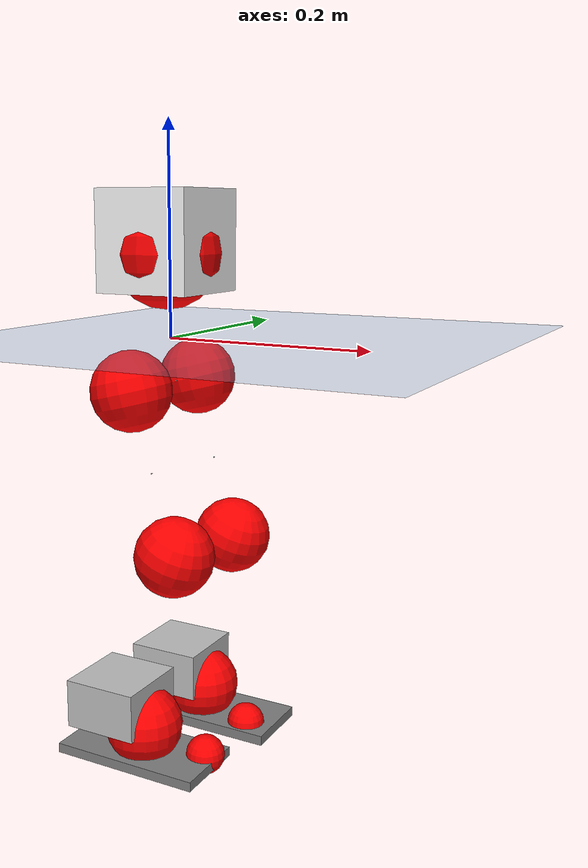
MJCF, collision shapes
<mujoco model="pi_12dof_release_v1">
  <compiler angle="radian" assetdir="assets" balanceinertia="true" inertiafromgeom="false"/>

  <option timestep="0.005" density="1.2" viscosity="2e-05"/>

  <size nkey="1"/>

  <visual>
    <quality shadowsize="8192"/>
    <map shadowclip="0.5"/>
  </visual>

  <default>
    <default class="/">
      <joint armature="0.01" damping="0.01" frictionloss="0.01"/>
      <geom contype="0" conaffinity="0" group="1" solref="-1000 -80"/>
      <site size="0.01 0.005 0.005" group="5"/>
      <general forcelimited="true" biastype="affine" gainprm="20" biasprm="0 -20 -0.5"/>
      <default class="foot">
        <geom size="0.0845 0.036 0.005" type="box" condim="6" group="4" priority="1" friction="0.9 0.2 0.2" solimp="0.015 1 0.005"/>
      </default>
      <default class="reward_collision_sphere">
        <geom group="5" rgba="1 0 0 1"/>
      </default>
    </default>
  </default>

  <asset>
    <texture type="skybox" colorspace="auto" name="//unnamed_texture_0" builtin="gradient" rgb1="0.95 0.95 0.95" rgb2="0.95 0.95 0.95" width="100" height="600"/>
    <texture type="2d" colorspace="auto" name="texplane" builtin="checker" rgb1="0.345 0.575 0.748" rgb2="0.345 0.575 0.748" markrgb="1 1 1" width="512" height="512"/>
    <material name="MatPlane" class="/" texture="texplane" texuniform="true" texrepeat="2 2" specular="0.9"/>
    <mesh name="baselink_1" class="/" file="baselink_1.STL"/>
    <mesh name="r_hip_pitch_link" class="/" file="r_hip_pitch_link.STL"/>
    <mesh name="r_hip_roll_link" class="/" file="r_hip_roll_link.STL"/>
    <mesh name="r_thigh_link" class="/" file="r_thigh_link.STL"/>
    <mesh name="r_calf_link" class="/" file="r_calf_link.STL"/>
    <mesh name="r_ankle_pitch_link" class="/" file="r_ankle_pitch_link.STL"/>
    <mesh name="r_ankle_roll_link" class="/" file="r_ankle_roll_link.STL"/>
    <mesh name="l_hip_pitch_link" class="/" file="l_hip_pitch_link.STL"/>
    <mesh name="l_hip_roll_link" class="/" file="l_hip_roll_link.STL"/>
    <mesh name="l_thigh_link" class="/" file="l_thigh_link.STL"/>
    <mesh name="l_calf_link" class="/" file="l_calf_link.STL"/>
    <mesh name="l_ankle_pitch_link" class="/" file="l_ankle_pitch_link.STL"/>
    <mesh name="l_ankle_roll_link" class="/" file="l_ankle_roll_link.STL"/>
  </asset>

  <worldbody>
    <geom name="floor" class="/" size="100 100 0.125" type="plane" group="0" material="MatPlane"/>
    <light name="toplight_shadow" class="/" pos="0 0 5" dir="0.0990148 0.0990148 -0.990148" type="directional" ambient="0.04 0.04 0.04" diffuse="0.55 0.55 0.55" specular="0.12 0.12 0.12"/>
    <light name="toplight_fill" class="/" pos="0 0 5" dir="0.0990148 0.0990148 -0.990148" type="directional" castshadow="false" ambient="0.04 0.04 0.04" diffuse="0.3 0.3 0.3" specular="0.08 0.08 0.08"/>
    <body name="trunk" pos="-0.00283266 -0.000869843 -0.00241338" quat="0.999999 0.00039263 0.00109356 0.000775966">
      <inertial pos="-0.000373431 0.00175773 0.0454748" quat="0.702383 0.0103298 0.000593085 0.711724" mass="1.79649" diaginertia="0.00671584 0.00194377 0.00891003"/>
      <joint name="//unnamed_joint_0" type="free"/>
      <geom name="//unnamed_geom_1" class="/" type="mesh" density="0" rgba="1 1 1 1" mesh="baselink_1"/>
      <geom name="//unnamed_geom_2" class="/" size="0.0469955 0.0469955 0.0469955" pos="0 0 0.0928467" type="box" rgba="1 1 1 1"/>
      <geom name="//unnamed_geom_3" class="reward_collision_sphere" size="0.051695" pos="0 0 0.0812408"/>
      <site name="imu" class="/" pos="0.013042 -0.00545621 -0.00715075" size="0.0093991"/>
      <camera name="track" class="/" pos="0 -1.47111 0" quat="0.707107 0.707107 0 0" mode="trackcom"/>
      <camera name="ego_camera" class="/" pos="0.0692692 0 0.208905" quat="-0.5 -0.5 0.5 0.5"/>
      <body name="r_hip_pitch_link" pos="-0.00146468 -0.0171022 -0.0392918" quat="0.992131 -0.00037379 -0.1252 2.64984e-05">
        <inertial pos="-0.0016442 -0.0408097 -7.7442e-05" quat="-0.0244731 0.713533 -0.0351303 0.699312" mass="0.314885" diaginertia="7.49012e-05 2.17366e-05 0.000184714"/>
        <joint name="r_hip_pitch_joint" class="/" pos="0 0 0" axis="-0.00143784 -0.999997 0.00196984" range="-1.74905 1.22534" armature="0.00820948" damping="0.00856128" frictionloss="0.00969655"/>
        <geom name="//unnamed_geom_4" class="/" type="mesh" density="0" rgba="0.75294 0.75294 0.75294 1" mesh="r_hip_pitch_link"/>
        <geom name="//unnamed_geom_5" class="/" size="0.000469955 0.000469955 0.000469955" type="box" rgba="0.75294 0.75294 0.75294 1"/>
        <body name="r_hip_roll_link" pos="-0.00172556 -0.0405951 4.03792e-05" quat="1 5.87369e-05 6.28667e-05 -8.93352e-05">
          <inertial pos="-0.00153442 -0.00205373 -0.0718354" quat="0.705472 -0.0815948 -0.0851097 0.698861" mass="0.322012" diaginertia="0.000220878 5.7439e-05 0.000266687"/>
          <joint name="r_hip_roll_joint" class="/" pos="0 0 0" axis="-0.999907 -0.00272551 0.0133579" range="-0.142518 0.540754" armature="0.0100417" damping="0.0050866" frictionloss="0.00887903"/>
          <geom name="//unnamed_geom_6" class="/" type="mesh" density="0" rgba="0.75294 0.75294 0.75294 1" mesh="r_hip_roll_link"/>
          <geom name="//unnamed_geom_7" class="/" size="0.000469955 0.000469955 0.000469955" type="box" rgba="0.75294 0.75294 0.75294 1"/>
          <geom name="//unnamed_geom_8" class="reward_collision_sphere" size="0.0375964"/>
          <body name="r_thigh_link" pos="0.00049058 0.00182123 -0.0772066" quat="1 -0.000442016 7.31212e-05 -0.000392167">
            <inertial pos="-0.000127045 -0.00200455 -0.0522837" quat="0.737329 0.675533 0.000165761 -9.18322e-05" mass="0.096198" diaginertia="8.71172e-05 2.04124e-05 0.000122029"/>
            <joint name="r_thigh_joint" class="/" pos="0 0 0" axis="-0.0160642 0.000853296 -0.999871" stiffness="0.00577337" range="-0.287707 0.626116" armature="0.00914817" damping="0" frictionloss="0.00890737"/>
            <geom name="//unnamed_geom_9" class="/" type="mesh" density="0" rgba="0.75294 0.75294 0.75294 1" mesh="r_thigh_link"/>
            <geom name="//unnamed_geom_10" class="/" size="0.000469955 0.000469955 0.000469955" type="box" rgba="0.75294 0.75294 0.75294 1"/>
            <body name="r_calf_link" pos="0.00285041 0.00152787 -0.0797099" quat="0.947655 -1.83479e-05 0.319297 3.20665e-06">
              <inertial pos="-0.00128426 -0.00352286 -0.0806556" quat="0.999895 -0.00688096 -0.00728252 0.0104843" mass="0.690214" diaginertia="0.00234474 0.000788611 0.000373575"/>
              <joint name="r_calf_joint" class="/" pos="0 0 0" axis="-0.000177538 -1 -0.000165051" range="-1.6084 0.650933" armature="0.0080009" damping="0.00387865" frictionloss="0.00940116"/>
              <geom name="//unnamed_geom_11" class="/" type="mesh" density="0" rgba="0.75294 0.75294 0.75294 1" mesh="r_calf_link"/>
              <geom name="//unnamed_geom_12" class="/" size="0.000469955 0.000469955 0.000469955" type="box" rgba="0.75294 0.75294 0.75294 1"/>
              <geom name="//unnamed_geom_13" class="reward_collision_sphere" size="0.0375964"/>
              <body name="r_ankle_pitch_link" pos="0.00254435 -0.000480026 -0.164722" quat="0.979952 0.00026741 -0.199234 -7.62016e-05">
                <inertial pos="0.00380095 0.00265629 -0.00188283" quat="0.00514067 0.704506 -0.00199924 0.709677" mass="0.151246" diaginertia="0.000204994 4.88531e-05 0.000258173"/>
                <joint name="r_ankle_pitch_joint" class="/" pos="0 0 0" axis="0.0062731 -0.99998 -0.000345484" stiffness="0.000575137" range="-1.29459 0.528704" armature="0.00948548" damping="0.00919307" frictionloss="0.0105305"/>
                <geom name="//unnamed_geom_14" class="/" type="mesh" density="0" rgba="0.75294 0.75294 0.75294 1" mesh="r_ankle_pitch_link"/>
                <geom name="//unnamed_geom_15" class="/" size="0.0366565 0.0375964 0.0234977" type="box" rgba="0.75294 0.75294 0.75294 1"/>
                <body name="r_ankle_roll_link" pos="0.0708029 0.00229586 -0.000671908" quat="1 -0.000260111 -8.93991e-05 -0.000412342">
                  <inertial pos="-0.0223599 -0.000614082 -0.0159103" quat="0.557759 0.421872 0.443016 0.560951" mass="0.411218" diaginertia="0.00076949 0.000222879 0.000573785"/>
                  <joint name="r_ankle_roll_joint" class="/" pos="0 0 0" axis="-0.999939 -0.0104885 0.00345251" range="-0.0938362 0.10303" armature="0.00848033" damping="0.0208188" frictionloss="0.0081768"/>
                  <geom name="//unnamed_geom_16" class="/" type="mesh" density="0" rgba="0.75294 0.75294 0.75294 1" mesh="r_ankle_roll_link"/>
                  <geom name="//unnamed_geom_17" class="/" type="mesh" rgba="0.75294 0.75294 0.75294 1" mesh="r_ankle_roll_link"/>
                  <geom name="right_foot" class="foot" size="0.0747768 0.0373995 0.0046873" pos="-0.0471031 0 -0.0510657"/>
                  <geom name="//unnamed_geom_19" class="reward_collision_sphere" size="0.0375964" pos="-0.0461795 0 -0.0232117"/>
                  <geom name="//unnamed_geom_20" class="reward_collision_sphere" size="0.0187982" pos="0.0138538 0.0147111 -0.0464233"/>
                  <geom name="//unnamed_geom_21" class="reward_collision_sphere" size="0.0187982" pos="-0.110831 0.0147111 -0.0464233"/>
                  <site name="right_foot" class="foot" pos="-0.0471031 0 -0.0510657" size="0.0093991"/>
                </body>
              </body>
            </body>
          </body>
        </body>
      </body>
      <body name="l_hip_pitch_link" pos="-0.000108724 0.0148537 -0.0400417" quat="0.992172 -0.000154877 -0.124882 0.000161748">
        <inertial pos="0.0010388 0.040801 -0.00237975" quat="-0.040558 0.704986 0.0337595 0.707255" mass="0.336393" diaginertia="8.99989e-05 2.21057e-05 0.000212044"/>
        <joint name="l_hip_pitch_joint" class="/" pos="0 0 0" axis="0.0095206 0.999943 -0.00490335" range="-1.19076 1.73085" armature="0.0107888" damping="0.00503868" frictionloss="0.00977406"/>
        <geom name="//unnamed_geom_22" class="/" type="mesh" density="0" rgba="0.75294 0.75294 0.75294 1" mesh="l_hip_pitch_link"/>
        <geom name="//unnamed_geom_23" class="/" size="0.000469955 0.000469955 0.000469955" type="box" rgba="0.75294 0.75294 0.75294 1"/>
        <body name="l_hip_roll_link" pos="-0.000129384 0.0408416 -0.000623505" quat="1 0.000344787 0.00033591 0.000303962">
          <inertial pos="-0.00382654 -0.000549356 -0.0717123" quat="0.700547 -0.0698343 -0.0875931 0.704758" mass="0.332328" diaginertia="0.000223833 6.10382e-05 0.000269626"/>
          <joint name="l_hip_roll_joint" class="/" pos="0 0 0" axis="-0.999996 -0.00182086 0.00219402" stiffness="0.0041646" range="-0.537263 0.17123" armature="0.00826985" damping="0.0029743" frictionloss="0.00944626"/>
          <geom name="//unnamed_geom_24" class="/" type="mesh" density="0" rgba="0.75294 0.75294 0.75294 1" mesh="l_hip_roll_link"/>
          <geom name="//unnamed_geom_25" class="/" size="0.000469955 0.000469955 0.000469955" type="box" rgba="0.75294 0.75294 0.75294 1"/>
          <geom name="//unnamed_geom_26" class="reward_collision_sphere" size="0.0375964"/>
          <body name="l_thigh_link" pos="-0.00276828 0.00165121 -0.0833758" quat="1 -0.000233158 0.000136902 -0.000128859">
            <inertial pos="0.00282997 -0.00413357 -0.0522807" quat="0.670308 0.741993 0.00395723 0.0108664" mass="0.0907968" diaginertia="8.43248e-05 2.09446e-05 0.000120623"/>
            <joint name="l_thigh_joint" class="/" pos="0 0 0" axis="-0.00117214 -0.000119107 -0.999999" range="-0.59291 0.248546" armature="0.00938534" damping="0.00233476" frictionloss="0.00986313"/>
            <geom name="//unnamed_geom_27" class="/" type="mesh" density="0" rgba="0.75294 0.75294 0.75294 1" mesh="l_thigh_link"/>
            <geom name="//unnamed_geom_28" class="/" size="0.000469955 0.000469955 0.000469955" type="box" rgba="0.75294 0.75294 0.75294 1"/>
            <body name="l_calf_link" pos="0.00159685 -0.000352232 -0.0809048" quat="0.947524 0.0001885 0.319685 0.00031544">
              <inertial pos="0.000660343 0.00463167 -0.0840733" quat="0.999986 0.00301203 8.64902e-05 0.00432103" mass="0.680416" diaginertia="0.00234223 0.000743514 0.000360198"/>
              <joint name="l_calf_joint" class="/" pos="0 0 0" axis="6.16192e-05 1 0.000123718" range="-0.623809 1.69541" armature="0.00952647" damping="0.00773354" frictionloss="0.00997138"/>
              <geom name="//unnamed_geom_29" class="/" type="mesh" density="0" rgba="0.75294 0.75294 0.75294 1" mesh="l_calf_link"/>
              <geom name="//unnamed_geom_30" class="/" size="0.000469955 0.000469955 0.000469955" type="box" rgba="0.75294 0.75294 0.75294 1"/>
              <geom name="//unnamed_geom_31" class="reward_collision_sphere" size="0.0375964"/>
              <body name="l_ankle_pitch_link" pos="0.00114038 0.000771499 -0.160826" quat="0.980042 -3.57349e-05 -0.198791 -0.000267997">
                <inertial pos="0.00166232 0.002172 0.000155693" quat="-0.00170921 0.707186 0.00362893 0.707016" mass="0.136649" diaginertia="0.00020538 4.68065e-05 0.00025213"/>
                <joint name="l_ankle_pitch_joint" class="/" pos="0 0 0" axis="-0.00312258 0.999995 -0.00100871" range="-0.5473 1.31402" armature="0.00823198" damping="0.0123918" frictionloss="0.00937799"/>
                <geom name="//unnamed_geom_32" class="/" type="mesh" density="0" rgba="0.75294 0.75294 0.75294 1" mesh="l_ankle_pitch_link"/>
                <geom name="//unnamed_geom_33" class="/" size="0.0366565 0.0375964 0.0234977" type="box" rgba="0.75294 0.75294 0.75294 1"/>
                <body name="l_ankle_roll_link" pos="0.0714721 0.000582668 0.00174462" quat="1 2.86067e-05 0.000218946 4.02621e-05">
                  <inertial pos="-0.0216909 -0.000279717 -0.0173022" quat="0.560421 0.427158 0.435229 0.560393" mass="0.400959" diaginertia="0.000735086 0.000216986 0.000569059"/>
                  <joint name="l_ankle_roll_joint" class="/" pos="0 0 0" axis="-0.999997 -0.00167752 -0.00168358" range="-0.134175 0.150236" armature="0.0107649" damping="0.011263" frictionloss="0.00943818"/>
                  <geom name="//unnamed_geom_34" class="/" type="mesh" density="0" rgba="0.75294 0.75294 0.75294 1" mesh="l_ankle_roll_link"/>
                  <geom name="//unnamed_geom_35" class="/" type="mesh" rgba="0.75294 0.75294 0.75294 1" mesh="l_ankle_roll_link"/>
                  <geom name="left_foot" class="foot" size="0.0896128 0.0364769 0.00490292" pos="-0.0471031 0 -0.0510657"/>
                  <geom name="//unnamed_geom_37" class="reward_collision_sphere" size="0.0375964" pos="-0.0461795 0 -0.0232117"/>
                  <geom name="//unnamed_geom_38" class="reward_collision_sphere" size="0.0187982" pos="0.0138538 -0.0147111 -0.0464233"/>
                  <geom name="//unnamed_geom_39" class="reward_collision_sphere" size="0.0187982" pos="-0.110831 -0.0147111 -0.0464233"/>
                  <site name="left_foot" class="foot" pos="-0.0471031 0 -0.0510657" size="0.0093991"/>
                </body>
              </body>
            </body>
          </body>
        </body>
      </body>
    </body>
  </worldbody>

  <contact>
    <pair class="/" geom1="floor" geom2="right_foot" name="//unnamed_contact_1"/>
    <pair class="/" geom1="floor" geom2="left_foot" name="//unnamed_contact_0"/>
  </contact>

  <actuator>
    <general name="r_hip_pitch_joint" class="/" joint="r_hip_pitch_joint" forcerange="-19.646 19.646" gainprm="18.6759" biasprm="0 -18.6759 -0.444611"/>
    <general name="r_hip_roll_joint" class="/" joint="r_hip_roll_joint" forcerange="-18.0389 18.0389" gainprm="18.6759" biasprm="0 -18.6759 -0.444611"/>
    <general name="r_thigh_joint" class="/" joint="r_thigh_joint" forcerange="-21.6638 21.6638" gainprm="18.6759" biasprm="0 -18.6759 -0.444611"/>
    <general name="r_calf_joint" class="/" joint="r_calf_joint" forcerange="-18.8797 18.8797" gainprm="18.6759" biasprm="0 -18.6759 -0.444611"/>
    <general name="r_ankle_pitch_joint" class="/" joint="r_ankle_pitch_joint" forcerange="-20.7906 20.7906" gainprm="18.6759" biasprm="0 -18.6759 -0.444611"/>
    <general name="r_ankle_roll_joint" class="/" joint="r_ankle_roll_joint" forcerange="-21.6035 21.6035" gainprm="18.6759" biasprm="0 -18.6759 -0.444611"/>
    <general name="l_hip_pitch_joint" class="/" joint="l_hip_pitch_joint" forcerange="-19.4293 19.4293" gainprm="18.6759" biasprm="0 -18.6759 -0.444611"/>
    <general name="l_hip_roll_joint" class="/" joint="l_hip_roll_joint" forcerange="-21.6206 21.6206" gainprm="18.6759" biasprm="0 -18.6759 -0.444611"/>
    <general name="l_thigh_joint" class="/" joint="l_thigh_joint" forcerange="-18.1558 18.1558" gainprm="18.6759" biasprm="0 -18.6759 -0.444611"/>
    <general name="l_calf_joint" class="/" joint="l_calf_joint" forcerange="-18.9115 18.9115" gainprm="18.6759" biasprm="0 -18.6759 -0.444611"/>
    <general name="l_ankle_pitch_joint" class="/" joint="l_ankle_pitch_joint" forcerange="-21.7383 21.7383" gainprm="18.6759" biasprm="0 -18.6759 -0.444611"/>
    <general name="l_ankle_roll_joint" class="/" joint="l_ankle_roll_joint" forcerange="-20.3829 20.3829" gainprm="18.6759" biasprm="0 -18.6759 -0.444611"/>
  </actuator>

  <sensor>
    <gyro site="imu" name="imu_angular_velocity"/>
    <velocimeter site="imu" name="imu_linear_velocity"/>
    <framelinvel objtype="site" objname="left_foot" name="left_foot_global_linear_velocity"/>
    <framelinvel objtype="site" objname="right_foot" name="right_foot_global_linear_velocity"/>
  </sensor>

  <keyframe>
    <key name="home" qpos="0 0 0.291 1 0 0 0 0.4 0 0 -0.8 0.4 0 -0.4 0 0 0.8 -0.4 0"/>
  </keyframe>
</mujoco>
